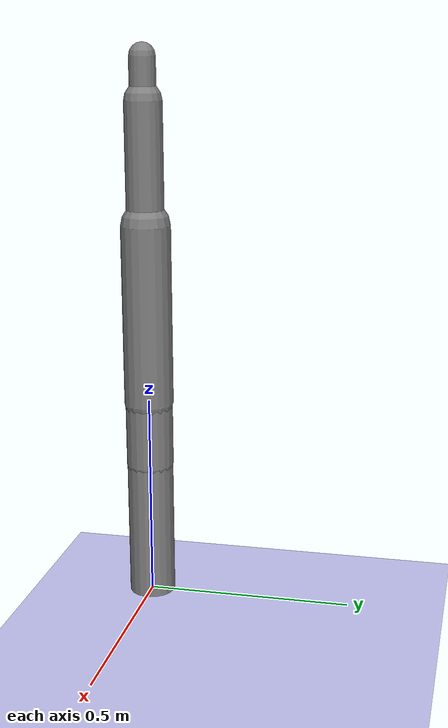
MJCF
<?xml version='1.0' encoding='UTF-8'?>
<mujoco model="robot_model">
  <worldbody>
    <light name="light" pos="0 -3 10" dir="0 0.5 -1" diffuse=".8 .8 .8" specular="0.1 0.1 0.1"/>
    <geom name="floor" type="plane" size="10.0 10.0 0.1" pos="0 0 0" rgba="0.8 0.8 1 1" contype="2" conaffinity="1"/>
    <body name="limb0" pos="0 0 0">
      <geom type="capsule" fromto="0 0 0 0 0 0.3788734656666706" size="0.05658997608461824" density="810.5161873195898" contype="1" conaffinity="2"/>
      <site type="sphere" size="0.01" name="limb0_site0" pos="0 0 0.3372353104102845"/>
      <site type="sphere" size="0.01" name="limb0_site1" pos="0 0 0.18032288240118416"/>
      <freejoint name="limb0_root"/>
      <body name="limb1" pos="0 0 0.3372353104102845">
        <geom type="capsule" fromto="0 0 0 0 0 0.39633494504822214" size="0.057691555622372784" density="1084.4737387645157" contype="1" conaffinity="2"/>
        <site type="sphere" size="0.01" name="limb1_site0" pos="0 0 0.3886095744617089"/>
        <site type="sphere" size="0.01" name="limb1_site1" pos="0 0 0.15800623107957942"/>
        <body name="limb2" pos="0 0 0.3886095744617089">
          <geom type="capsule" fromto="0 0 0 0 0 0.5" size="0.045329815490319995" density="1017.2531489540214" contype="1" conaffinity="2"/>
          <site type="sphere" size="0.01" name="limb2_site0" pos="0 0 0.4086911084967624"/>
          <body name="limb3" pos="0 0 0.4086911084967624">
            <geom type="capsule" fromto="0 0 0 0 0 0.19166066799868264" size="0.0314707546179414" density="956.2416848734547" contype="1" conaffinity="2"/>
            <joint name="joint_limb2_limb3_0" type="hinge" axis="0 1 0" range="-39.54825129765963 39.54825129765963" damping="5.0"/>
          </body>
          <joint name="joint_limb1_limb2_0" type="hinge" axis="0 1 0" range="-60.504894728636025 60.504894728636025" damping="5.0"/>
        </body>
        <body name="limb4" pos="0 0 0.15800623107957942">
          <geom type="capsule" fromto="0 0 0 0 0 0.4395241174791506" size="0.06" density="835.0249507936275" contype="1" conaffinity="2"/>
          <joint name="joint_limb1_limb4_0" type="hinge" axis="0 0 1" range="-72.8282440056993 72.8282440056993" damping="5.0"/>
        </body>
        <joint name="joint_limb0_limb1_0" type="hinge" axis="0 1 0" range="-109.19092787781891 109.19092787781891" damping="5.0"/>
      </body>
      <body name="limb5" pos="0 0 0.18032288240118416">
        <geom type="capsule" fromto="0 0 0 0 0 0.43647014061798706" size="0.041248644928393044" density="789.216346642524" contype="1" conaffinity="2"/>
        <joint name="joint_limb0_limb5_0" type="hinge" axis="0 0 1" range="-45.82744000775369 45.82744000775369" damping="5.0"/>
      </body>
    </body>
  </worldbody>
  <actuator>
    <position name="position_actuator_joint_limb0_limb1_0" joint="joint_limb0_limb1_0" gear="1.9782617184435591" inheritrange="1" forcerange="-26.832459348661388 26.832459348661388" forcelimited="true" kp="100.0"/>
    <position name="position_actuator_joint_limb1_limb2_0" joint="joint_limb1_limb2_0" gear="1.855224638398584" inheritrange="1" forcerange="-18.401183504925072 18.401183504925072" forcelimited="true" kp="100.0"/>
    <position name="position_actuator_joint_limb2_limb3_0" joint="joint_limb2_limb3_0" gear="1.9577561249166682" inheritrange="1" forcerange="-3.4754816031092273 3.4754816031092273" forcelimited="true" kp="100.0"/>
    <position name="position_actuator_joint_limb1_limb4_0" joint="joint_limb1_limb4_0" gear="0.8397505935235454" inheritrange="1" forcerange="-24.531694271366895 24.531694271366895" forcelimited="true" kp="100.0"/>
    <position name="position_actuator_joint_limb0_limb5_0" joint="joint_limb0_limb5_0" gear="0.7342032220860385" inheritrange="1" forcerange="-10.36646920093445 10.36646920093445" forcelimited="true" kp="100.0"/>
  </actuator>
</mujoco>
